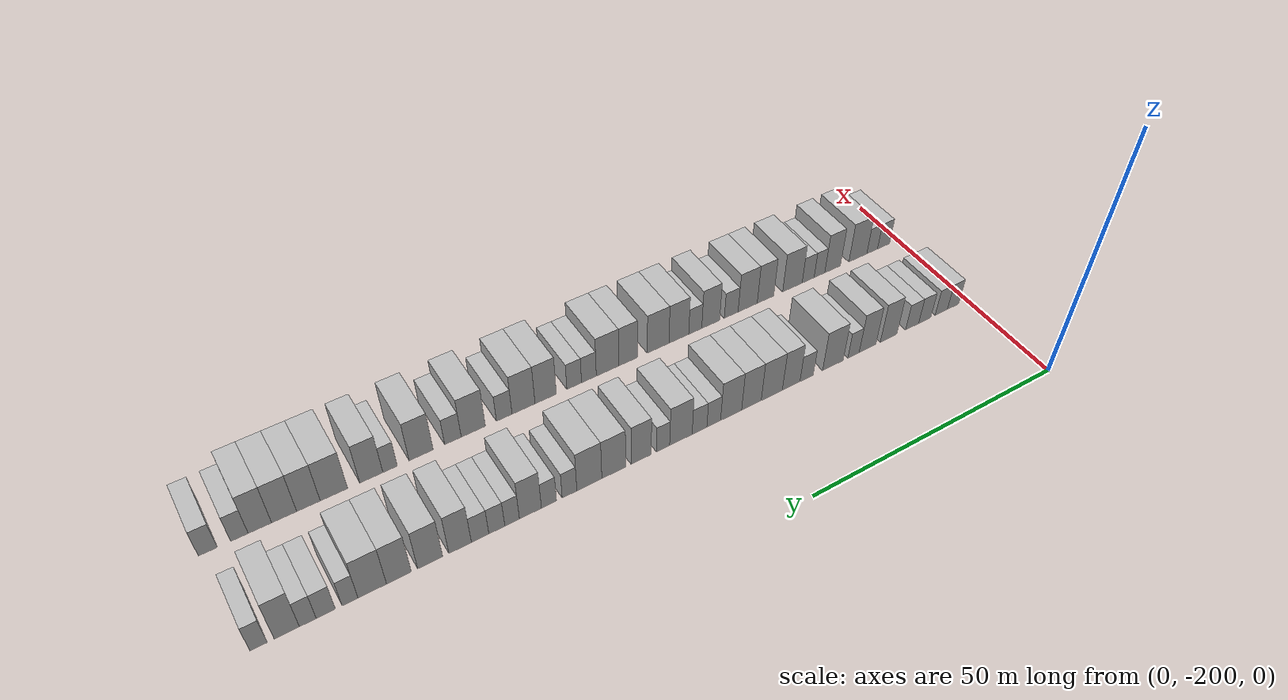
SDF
<sdf version="1.6">
 <world name="default">
  <model name="building_1">
   <static>1</static>
   <pose>25.0000 -196.6714 0 0.000000 0.000000 0.000000</pose>
   <link name="link">
    <pose>0 0 3.00 0 0 0</pose>
    <collision name="collision"><geometry><box><size>10.0000 2.6572 6.0000</size></box></geometry></collision>
    <visual name="visual">
     <cast_shadows>0</cast_shadows>
     <geometry><box><size>10.0000 2.6572 6.0000</size></box></geometry>
     <material>
      <script>
       <uri>model://HANNAS_wall/materials/scripts</uri>
       <uri>model://HANNAS_wall/materials/textures</uri>
       <name>vrc/HANNAS_wall</name>
      </script>
     </material>
    </visual>
   </link>
  </model>
  <model name="building_2">
   <static>1</static>
   <pose>25.0000 -193.8930 0 0.000000 0.000000 0.000000</pose>
   <link name="link">
    <pose>0 0 3.00 0 0 0</pose>
    <collision name="collision"><geometry><box><size>10.0000 2.8997 6.0000</size></box></geometry></collision>
    <visual name="visual">
     <cast_shadows>0</cast_shadows>
     <geometry><box><size>10.0000 2.8997 6.0000</size></box></geometry>
     <material>
      <script>
       <uri>model://HANNAS_wall/materials/scripts</uri>
       <uri>model://HANNAS_wall/materials/textures</uri>
       <name>vrc/HANNAS_wall</name>
      </script>
     </material>
    </visual>
   </link>
  </model>
  <model name="building_3">
   <static>1</static>
   <pose>25.0000 -190.0357 0 0.000000 0.000000 0.000000</pose>
   <link name="link">
    <pose>0 0 3.00 0 0 0</pose>
    <collision name="collision"><geometry><box><size>10.0000 2.8149 6.0000</size></box></geometry></collision>
    <visual name="visual">
     <cast_shadows>0</cast_shadows>
     <geometry><box><size>10.0000 2.8149 6.0000</size></box></geometry>
     <material>
      <script>
       <uri>model://HANNAS_wall/materials/scripts</uri>
       <uri>model://HANNAS_wall/materials/textures</uri>
       <name>vrc/HANNAS_wall</name>
      </script>
     </material>
    </visual>
   </link>
  </model>
  <model name="building_4">
   <static>1</static>
   <pose>25.0000 -187.1431 0 0.000000 0.000000 0.000000</pose>
   <link name="link">
    <pose>0 0 3.00 0 0 0</pose>
    <collision name="collision"><geometry><box><size>10.0000 2.9703 6.0000</size></box></geometry></collision>
    <visual name="visual">
     <cast_shadows>0</cast_shadows>
     <geometry><box><size>10.0000 2.9703 6.0000</size></box></geometry>
     <material>
      <script>
       <uri>model://HANNAS_wall/materials/scripts</uri>
       <uri>model://HANNAS_wall/materials/textures</uri>
       <name>vrc/HANNAS_wall</name>
      </script>
     </material>
    </visual>
   </link>
  </model>
  <model name="building_5">
   <static>1</static>
   <pose>25.0000 -181.7959 0 0.000000 0.000000 0.000000</pose>
   <link name="link">
    <pose>0 0 4.50 0 0 0</pose>
    <collision name="collision"><geometry><box><size>10.0000 3.7241 9.0000</size></box></geometry></collision>
    <visual name="visual">
     <cast_shadows>0</cast_shadows>
     <geometry><box><size>10.0000 3.7241 9.0000</size></box></geometry>
     <material>
      <script>
       <uri>model://HANNAS_wall/materials/scripts</uri>
       <uri>model://HANNAS_wall/materials/textures</uri>
       <name>vrc/HANNAS_wall</name>
      </script>
     </material>
    </visual>
   </link>
  </model>
  <model name="building_6">
   <static>1</static>
   <pose>25.0000 -177.0930 0 0.000000 0.000000 0.000000</pose>
   <link name="link">
    <pose>0 0 4.50 0 0 0</pose>
    <collision name="collision"><geometry><box><size>10.0000 3.6816 9.0000</size></box></geometry></collision>
    <visual name="visual">
     <cast_shadows>0</cast_shadows>
     <geometry><box><size>10.0000 3.6816 9.0000</size></box></geometry>
     <material>
      <script>
       <uri>model://HANNAS_wall/materials/scripts</uri>
       <uri>model://HANNAS_wall/materials/textures</uri>
       <name>vrc/HANNAS_wall</name>
      </script>
     </material>
    </visual>
   </link>
  </model>
  <model name="building_7">
   <static>1</static>
   <pose>25.0000 -174.0085 0 0.000000 0.000000 0.000000</pose>
   <link name="link">
    <pose>0 0 3.00 0 0 0</pose>
    <collision name="collision"><geometry><box><size>10.0000 2.4874 6.0000</size></box></geometry></collision>
    <visual name="visual">
     <cast_shadows>0</cast_shadows>
     <geometry><box><size>10.0000 2.4874 6.0000</size></box></geometry>
     <material>
      <script>
       <uri>model://HANNAS_wall/materials/scripts</uri>
       <uri>model://HANNAS_wall/materials/textures</uri>
       <name>vrc/HANNAS_wall</name>
      </script>
     </material>
    </visual>
   </link>
  </model>
  <model name="building_8">
   <static>1</static>
   <pose>25.0000 -169.5566 0 0.000000 0.000000 0.000000</pose>
   <link name="link">
    <pose>0 0 4.50 0 0 0</pose>
    <collision name="collision"><geometry><box><size>10.0000 4.4163 9.0000</size></box></geometry></collision>
    <visual name="visual">
     <cast_shadows>0</cast_shadows>
     <geometry><box><size>10.0000 4.4163 9.0000</size></box></geometry>
     <material>
      <script>
       <uri>model://HANNAS_wall/materials/scripts</uri>
       <uri>model://HANNAS_wall/materials/textures</uri>
       <name>vrc/HANNAS_wall</name>
      </script>
     </material>
    </visual>
   </link>
  </model>
  <model name="building_9">
   <static>1</static>
   <pose>25.0000 -163.9405 0 0.000000 0.000000 0.000000</pose>
   <link name="link">
    <pose>0 0 3.00 0 0 0</pose>
    <collision name="collision"><geometry><box><size>10.0000 2.8160 6.0000</size></box></geometry></collision>
    <visual name="visual">
     <cast_shadows>0</cast_shadows>
     <geometry><box><size>10.0000 2.8160 6.0000</size></box></geometry>
     <material>
      <script>
       <uri>model://HANNAS_wall/materials/scripts</uri>
       <uri>model://HANNAS_wall/materials/textures</uri>
       <name>vrc/HANNAS_wall</name>
      </script>
     </material>
    </visual>
   </link>
  </model>
  <model name="building_10">
   <static>1</static>
   <pose>25.0000 -160.7035 0 0.000000 0.000000 0.000000</pose>
   <link name="link">
    <pose>0 0 4.50 0 0 0</pose>
    <collision name="collision"><geometry><box><size>10.0000 3.6581 9.0000</size></box></geometry></collision>
    <visual name="visual">
     <cast_shadows>0</cast_shadows>
     <geometry><box><size>10.0000 3.6581 9.0000</size></box></geometry>
     <material>
      <script>
       <uri>model://HANNAS_wall/materials/scripts</uri>
       <uri>model://HANNAS_wall/materials/textures</uri>
       <name>vrc/HANNAS_wall</name>
      </script>
     </material>
    </visual>
   </link>
  </model>
  <model name="building_11">
   <static>1</static>
   <pose>25.0000 -156.7026 0 0.000000 0.000000 0.000000</pose>
   <link name="link">
    <pose>0 0 4.50 0 0 0</pose>
    <collision name="collision"><geometry><box><size>10.0000 4.3437 9.0000</size></box></geometry></collision>
    <visual name="visual">
     <cast_shadows>0</cast_shadows>
     <geometry><box><size>10.0000 4.3437 9.0000</size></box></geometry>
     <material>
      <script>
       <uri>model://HANNAS_wall/materials/scripts</uri>
       <uri>model://HANNAS_wall/materials/textures</uri>
       <name>vrc/HANNAS_wall</name>
      </script>
     </material>
    </visual>
   </link>
  </model>
  <model name="building_12">
   <static>1</static>
   <pose>25.0000 -152.5547 0 0.000000 0.000000 0.000000</pose>
   <link name="link">
    <pose>0 0 4.50 0 0 0</pose>
    <collision name="collision"><geometry><box><size>10.0000 3.9522 9.0000</size></box></geometry></collision>
    <visual name="visual">
     <cast_shadows>0</cast_shadows>
     <geometry><box><size>10.0000 3.9522 9.0000</size></box></geometry>
     <material>
      <script>
       <uri>model://HANNAS_wall/materials/scripts</uri>
       <uri>model://HANNAS_wall/materials/textures</uri>
       <name>vrc/HANNAS_wall</name>
      </script>
     </material>
    </visual>
   </link>
  </model>
  <model name="building_13">
   <static>1</static>
   <pose>25.0000 -148.4807 0 0.000000 0.000000 0.000000</pose>
   <link name="link">
    <pose>0 0 4.50 0 0 0</pose>
    <collision name="collision"><geometry><box><size>10.0000 4.1957 9.0000</size></box></geometry></collision>
    <visual name="visual">
     <cast_shadows>0</cast_shadows>
     <geometry><box><size>10.0000 4.1957 9.0000</size></box></geometry>
     <material>
      <script>
       <uri>model://HANNAS_wall/materials/scripts</uri>
       <uri>model://HANNAS_wall/materials/textures</uri>
       <name>vrc/HANNAS_wall</name>
      </script>
     </material>
    </visual>
   </link>
  </model>
  <model name="building_14">
   <static>1</static>
   <pose>25.0000 -145.0377 0 0.000000 0.000000 0.000000</pose>
   <link name="link">
    <pose>0 0 3.00 0 0 0</pose>
    <collision name="collision"><geometry><box><size>10.0000 2.6903 6.0000</size></box></geometry></collision>
    <visual name="visual">
     <cast_shadows>0</cast_shadows>
     <geometry><box><size>10.0000 2.6903 6.0000</size></box></geometry>
     <material>
      <script>
       <uri>model://HANNAS_wall/materials/scripts</uri>
       <uri>model://HANNAS_wall/materials/textures</uri>
       <name>vrc/HANNAS_wall</name>
      </script>
     </material>
    </visual>
   </link>
  </model>
  <model name="building_15">
   <static>1</static>
   <pose>25.0000 -142.2592 0 0.000000 0.000000 0.000000</pose>
   <link name="link">
    <pose>0 0 3.00 0 0 0</pose>
    <collision name="collision"><geometry><box><size>10.0000 2.8667 6.0000</size></box></geometry></collision>
    <visual name="visual">
     <cast_shadows>0</cast_shadows>
     <geometry><box><size>10.0000 2.8667 6.0000</size></box></geometry>
     <material>
      <script>
       <uri>model://HANNAS_wall/materials/scripts</uri>
       <uri>model://HANNAS_wall/materials/textures</uri>
       <name>vrc/HANNAS_wall</name>
      </script>
     </material>
    </visual>
   </link>
  </model>
  <model name="building_16">
   <static>1</static>
   <pose>25.0000 -138.6716 0 0.000000 0.000000 0.000000</pose>
   <link name="link">
    <pose>0 0 4.50 0 0 0</pose>
    <collision name="collision"><geometry><box><size>10.0000 4.3085 9.0000</size></box></geometry></collision>
    <visual name="visual">
     <cast_shadows>0</cast_shadows>
     <geometry><box><size>10.0000 4.3085 9.0000</size></box></geometry>
     <material>
      <script>
       <uri>model://HANNAS_wall/materials/scripts</uri>
       <uri>model://HANNAS_wall/materials/textures</uri>
       <name>vrc/HANNAS_wall</name>
      </script>
     </material>
    </visual>
   </link>
  </model>
  <model name="building_17">
   <static>1</static>
   <pose>25.0000 -135.2732 0 0.000000 0.000000 0.000000</pose>
   <link name="link">
    <pose>0 0 3.00 0 0 0</pose>
    <collision name="collision"><geometry><box><size>10.0000 2.4883 6.0000</size></box></geometry></collision>
    <visual name="visual">
     <cast_shadows>0</cast_shadows>
     <geometry><box><size>10.0000 2.4883 6.0000</size></box></geometry>
     <material>
      <script>
       <uri>model://HANNAS_wall/materials/scripts</uri>
       <uri>model://HANNAS_wall/materials/textures</uri>
       <name>vrc/HANNAS_wall</name>
      </script>
     </material>
    </visual>
   </link>
  </model>
  <model name="building_18">
   <static>1</static>
   <pose>25.0000 -131.1658 0 0.000000 0.000000 0.000000</pose>
   <link name="link">
    <pose>0 0 4.50 0 0 0</pose>
    <collision name="collision"><geometry><box><size>10.0000 3.7266 9.0000</size></box></geometry></collision>
    <visual name="visual">
     <cast_shadows>0</cast_shadows>
     <geometry><box><size>10.0000 3.7266 9.0000</size></box></geometry>
     <material>
      <script>
       <uri>model://HANNAS_wall/materials/scripts</uri>
       <uri>model://HANNAS_wall/materials/textures</uri>
       <name>vrc/HANNAS_wall</name>
      </script>
     </material>
    </visual>
   </link>
  </model>
  <model name="building_19">
   <static>1</static>
   <pose>25.0000 -126.1264 0 0.000000 0.000000 0.000000</pose>
   <link name="link">
    <pose>0 0 4.50 0 0 0</pose>
    <collision name="collision"><geometry><box><size>10.0000 4.3522 9.0000</size></box></geometry></collision>
    <visual name="visual">
     <cast_shadows>0</cast_shadows>
     <geometry><box><size>10.0000 4.3522 9.0000</size></box></geometry>
     <material>
      <script>
       <uri>model://HANNAS_wall/materials/scripts</uri>
       <uri>model://HANNAS_wall/materials/textures</uri>
       <name>vrc/HANNAS_wall</name>
      </script>
     </material>
    </visual>
   </link>
  </model>
  <model name="building_20">
   <static>1</static>
   <pose>25.0000 -121.7045 0 0.000000 0.000000 0.000000</pose>
   <link name="link">
    <pose>0 0 4.50 0 0 0</pose>
    <collision name="collision"><geometry><box><size>10.0000 4.4916 9.0000</size></box></geometry></collision>
    <visual name="visual">
     <cast_shadows>0</cast_shadows>
     <geometry><box><size>10.0000 4.4916 9.0000</size></box></geometry>
     <material>
      <script>
       <uri>model://HANNAS_wall/materials/scripts</uri>
       <uri>model://HANNAS_wall/materials/textures</uri>
       <name>vrc/HANNAS_wall</name>
      </script>
     </material>
    </visual>
   </link>
  </model>
  <model name="building_21">
   <static>1</static>
   <pose>25.0000 -118.1646 0 0.000000 0.000000 0.000000</pose>
   <link name="link">
    <pose>0 0 3.00 0 0 0</pose>
    <collision name="collision"><geometry><box><size>10.0000 2.5880 6.0000</size></box></geometry></collision>
    <visual name="visual">
     <cast_shadows>0</cast_shadows>
     <geometry><box><size>10.0000 2.5880 6.0000</size></box></geometry>
     <material>
      <script>
       <uri>model://HANNAS_wall/materials/scripts</uri>
       <uri>model://HANNAS_wall/materials/textures</uri>
       <name>vrc/HANNAS_wall</name>
      </script>
     </material>
    </visual>
   </link>
  </model>
  <model name="building_22">
   <static>1</static>
   <pose>25.0000 -114.5606 0 0.000000 0.000000 0.000000</pose>
   <link name="link">
    <pose>0 0 3.00 0 0 0</pose>
    <collision name="collision"><geometry><box><size>10.0000 2.6201 6.0000</size></box></geometry></collision>
    <visual name="visual">
     <cast_shadows>0</cast_shadows>
     <geometry><box><size>10.0000 2.6201 6.0000</size></box></geometry>
     <material>
      <script>
       <uri>model://HANNAS_wall/materials/scripts</uri>
       <uri>model://HANNAS_wall/materials/textures</uri>
       <name>vrc/HANNAS_wall</name>
      </script>
     </material>
    </visual>
   </link>
  </model>
  <model name="building_23">
   <static>1</static>
   <pose>25.0000 -111.3578 0 0.000000 0.000000 0.000000</pose>
   <link name="link">
    <pose>0 0 4.50 0 0 0</pose>
    <collision name="collision"><geometry><box><size>10.0000 3.7856 9.0000</size></box></geometry></collision>
    <visual name="visual">
     <cast_shadows>0</cast_shadows>
     <geometry><box><size>10.0000 3.7856 9.0000</size></box></geometry>
     <material>
      <script>
       <uri>model://HANNAS_wall/materials/scripts</uri>
       <uri>model://HANNAS_wall/materials/textures</uri>
       <name>vrc/HANNAS_wall</name>
      </script>
     </material>
    </visual>
   </link>
  </model>
  <model name="building_24">
   <static>1</static>
   <pose>25.0000 -108.2224 0 0.000000 0.000000 0.000000</pose>
   <link name="link">
    <pose>0 0 3.00 0 0 0</pose>
    <collision name="collision"><geometry><box><size>10.0000 2.4851 6.0000</size></box></geometry></collision>
    <visual name="visual">
     <cast_shadows>0</cast_shadows>
     <geometry><box><size>10.0000 2.4851 6.0000</size></box></geometry>
     <material>
      <script>
       <uri>model://HANNAS_wall/materials/scripts</uri>
       <uri>model://HANNAS_wall/materials/textures</uri>
       <name>vrc/HANNAS_wall</name>
      </script>
     </material>
    </visual>
   </link>
  </model>
  <model name="building_25">
   <static>1</static>
   <pose>25.0000 -105.6417 0 0.000000 0.000000 0.000000</pose>
   <link name="link">
    <pose>0 0 3.00 0 0 0</pose>
    <collision name="collision"><geometry><box><size>10.0000 2.6763 6.0000</size></box></geometry></collision>
    <visual name="visual">
     <cast_shadows>0</cast_shadows>
     <geometry><box><size>10.0000 2.6763 6.0000</size></box></geometry>
     <material>
      <script>
       <uri>model://HANNAS_wall/materials/scripts</uri>
       <uri>model://HANNAS_wall/materials/textures</uri>
       <name>vrc/HANNAS_wall</name>
      </script>
     </material>
    </visual>
   </link>
  </model>
  <model name="building_26">
   <static>1</static>
   <pose>25.0000 -102.8518 0 0.000000 0.000000 0.000000</pose>
   <link name="link">
    <pose>0 0 3.00 0 0 0</pose>
    <collision name="collision"><geometry><box><size>10.0000 2.9035 6.0000</size></box></geometry></collision>
    <visual name="visual">
     <cast_shadows>0</cast_shadows>
     <geometry><box><size>10.0000 2.9035 6.0000</size></box></geometry>
     <material>
      <script>
       <uri>model://HANNAS_wall/materials/scripts</uri>
       <uri>model://HANNAS_wall/materials/textures</uri>
       <name>vrc/HANNAS_wall</name>
      </script>
     </material>
    </visual>
   </link>
  </model>
  <model name="building_27">
   <static>1</static>
   <pose>25.0000 -99.5508 0 0.000000 0.000000 0.000000</pose>
   <link name="link">
    <pose>0 0 4.50 0 0 0</pose>
    <collision name="collision"><geometry><box><size>10.0000 3.6984 9.0000</size></box></geometry></collision>
    <visual name="visual">
     <cast_shadows>0</cast_shadows>
     <geometry><box><size>10.0000 3.6984 9.0000</size></box></geometry>
     <material>
      <script>
       <uri>model://HANNAS_wall/materials/scripts</uri>
       <uri>model://HANNAS_wall/materials/textures</uri>
       <name>vrc/HANNAS_wall</name>
      </script>
     </material>
    </visual>
   </link>
  </model>
  <model name="building_28">
   <static>1</static>
   <pose>25.0000 -94.6884 0 0.000000 0.000000 0.000000</pose>
   <link name="link">
    <pose>0 0 4.50 0 0 0</pose>
    <collision name="collision"><geometry><box><size>10.0000 4.0265 9.0000</size></box></geometry></collision>
    <visual name="visual">
     <cast_shadows>0</cast_shadows>
     <geometry><box><size>10.0000 4.0265 9.0000</size></box></geometry>
     <material>
      <script>
       <uri>model://HANNAS_wall/materials/scripts</uri>
       <uri>model://HANNAS_wall/materials/textures</uri>
       <name>vrc/HANNAS_wall</name>
      </script>
     </material>
    </visual>
   </link>
  </model>
  <model name="building_29">
   <static>1</static>
   <pose>25.0000 -89.7209 0 0.000000 0.000000 0.000000</pose>
   <link name="link">
    <pose>0 0 4.50 0 0 0</pose>
    <collision name="collision"><geometry><box><size>10.0000 3.9085 9.0000</size></box></geometry></collision>
    <visual name="visual">
     <cast_shadows>0</cast_shadows>
     <geometry><box><size>10.0000 3.9085 9.0000</size></box></geometry>
     <material>
      <script>
       <uri>model://HANNAS_wall/materials/scripts</uri>
       <uri>model://HANNAS_wall/materials/textures</uri>
       <name>vrc/HANNAS_wall</name>
      </script>
     </material>
    </visual>
   </link>
  </model>
  <model name="building_30">
   <static>1</static>
   <pose>25.0000 -85.5600 0 0.000000 0.000000 0.000000</pose>
   <link name="link">
    <pose>0 0 4.50 0 0 0</pose>
    <collision name="collision"><geometry><box><size>10.0000 4.4133 9.0000</size></box></geometry></collision>
    <visual name="visual">
     <cast_shadows>0</cast_shadows>
     <geometry><box><size>10.0000 4.4133 9.0000</size></box></geometry>
     <material>
      <script>
       <uri>model://HANNAS_wall/materials/scripts</uri>
       <uri>model://HANNAS_wall/materials/textures</uri>
       <name>vrc/HANNAS_wall</name>
      </script>
     </material>
    </visual>
   </link>
  </model>
  <model name="building_31">
   <static>1</static>
   <pose>25.0000 -82.1395 0 0.000000 0.000000 0.000000</pose>
   <link name="link">
    <pose>0 0 3.00 0 0 0</pose>
    <collision name="collision"><geometry><box><size>10.0000 2.4278 6.0000</size></box></geometry></collision>
    <visual name="visual">
     <cast_shadows>0</cast_shadows>
     <geometry><box><size>10.0000 2.4278 6.0000</size></box></geometry>
     <material>
      <script>
       <uri>model://HANNAS_wall/materials/scripts</uri>
       <uri>model://HANNAS_wall/materials/textures</uri>
       <name>vrc/HANNAS_wall</name>
      </script>
     </material>
    </visual>
   </link>
  </model>
  <model name="building_32">
   <static>1</static>
   <pose>25.0000 -78.4875 0 0.000000 0.000000 0.000000</pose>
   <link name="link">
    <pose>0 0 3.00 0 0 0</pose>
    <collision name="collision"><geometry><box><size>10.0000 2.8761 6.0000</size></box></geometry></collision>
    <visual name="visual">
     <cast_shadows>0</cast_shadows>
     <geometry><box><size>10.0000 2.8761 6.0000</size></box></geometry>
     <material>
      <script>
       <uri>model://HANNAS_wall/materials/scripts</uri>
       <uri>model://HANNAS_wall/materials/textures</uri>
       <name>vrc/HANNAS_wall</name>
      </script>
     </material>
    </visual>
   </link>
  </model>
  <model name="building_33">
   <static>1</static>
   <pose>25.0000 -75.7986 0 0.000000 0.000000 0.000000</pose>
   <link name="link">
    <pose>0 0 3.00 0 0 0</pose>
    <collision name="collision"><geometry><box><size>10.0000 2.5016 6.0000</size></box></geometry></collision>
    <visual name="visual">
     <cast_shadows>0</cast_shadows>
     <geometry><box><size>10.0000 2.5016 6.0000</size></box></geometry>
     <material>
      <script>
       <uri>model://HANNAS_wall/materials/scripts</uri>
       <uri>model://HANNAS_wall/materials/textures</uri>
       <name>vrc/HANNAS_wall</name>
      </script>
     </material>
    </visual>
   </link>
  </model>
  <model name="building_34">
   <static>1</static>
   <pose>25.0000 -72.7045 0 0.000000 0.000000 0.000000</pose>
   <link name="link">
    <pose>0 0 4.50 0 0 0</pose>
    <collision name="collision"><geometry><box><size>10.0000 3.6865 9.0000</size></box></geometry></collision>
    <visual name="visual">
     <cast_shadows>0</cast_shadows>
     <geometry><box><size>10.0000 3.6865 9.0000</size></box></geometry>
     <material>
      <script>
       <uri>model://HANNAS_wall/materials/scripts</uri>
       <uri>model://HANNAS_wall/materials/textures</uri>
       <name>vrc/HANNAS_wall</name>
      </script>
     </material>
    </visual>
   </link>
  </model>
  <model name="building_35">
   <static>1</static>
   <pose>25.0000 -68.6142 0 0.000000 0.000000 0.000000</pose>
   <link name="link">
    <pose>0 0 3.00 0 0 0</pose>
    <collision name="collision"><geometry><box><size>10.0000 2.4942 6.0000</size></box></geometry></collision>
    <visual name="visual">
     <cast_shadows>0</cast_shadows>
     <geometry><box><size>10.0000 2.4942 6.0000</size></box></geometry>
     <material>
      <script>
       <uri>model://HANNAS_wall/materials/scripts</uri>
       <uri>model://HANNAS_wall/materials/textures</uri>
       <name>vrc/HANNAS_wall</name>
      </script>
     </material>
    </visual>
   </link>
  </model>
  <model name="building_101">
   <static>1</static>
   <pose>44.0000 -196.5357 0 0.000000 0.000000 0.000000</pose>
   <link name="link">
    <pose>0 0 3.00 0 0 0</pose>
    <collision name="collision"><geometry><box><size>10.0000 2.9286 6.0000</size></box></geometry></collision>
    <visual name="visual">
     <cast_shadows>0</cast_shadows>
     <geometry><box><size>10.0000 2.9286 6.0000</size></box></geometry>
     <material>
      <script>
       <uri>model://HANNAS_wall/materials/scripts</uri>
       <uri>model://HANNAS_wall/materials/textures</uri>
       <name>vrc/HANNAS_wall</name>
      </script>
     </material>
    </visual>
   </link>
  </model>
  <model name="building_102">
   <static>1</static>
   <pose>44.0000 -193.7895 0 0.000000 0.000000 0.000000</pose>
   <link name="link">
    <pose>0 0 3.00 0 0 0</pose>
    <collision name="collision"><geometry><box><size>10.0000 2.5638 6.0000</size></box></geometry></collision>
    <visual name="visual">
     <cast_shadows>0</cast_shadows>
     <geometry><box><size>10.0000 2.5638 6.0000</size></box></geometry>
     <material>
      <script>
       <uri>model://HANNAS_wall/materials/scripts</uri>
       <uri>model://HANNAS_wall/materials/textures</uri>
       <name>vrc/HANNAS_wall</name>
      </script>
     </material>
    </visual>
   </link>
  </model>
  <model name="building_103">
   <static>1</static>
   <pose>44.0000 -190.3772 0 0.000000 0.000000 0.000000</pose>
   <link name="link">
    <pose>0 0 4.50 0 0 0</pose>
    <collision name="collision"><geometry><box><size>10.0000 4.2609 9.0000</size></box></geometry></collision>
    <visual name="visual">
     <cast_shadows>0</cast_shadows>
     <geometry><box><size>10.0000 4.2609 9.0000</size></box></geometry>
     <material>
      <script>
       <uri>model://HANNAS_wall/materials/scripts</uri>
       <uri>model://HANNAS_wall/materials/textures</uri>
       <name>vrc/HANNAS_wall</name>
      </script>
     </material>
    </visual>
   </link>
  </model>
  <model name="building_104">
   <static>1</static>
   <pose>44.0000 -184.4240 0 0.000000 0.000000 0.000000</pose>
   <link name="link">
    <pose>0 0 4.50 0 0 0</pose>
    <collision name="collision"><geometry><box><size>10.0000 3.6456 9.0000</size></box></geometry></collision>
    <visual name="visual">
     <cast_shadows>0</cast_shadows>
     <geometry><box><size>10.0000 3.6456 9.0000</size></box></geometry>
     <material>
      <script>
       <uri>model://HANNAS_wall/materials/scripts</uri>
       <uri>model://HANNAS_wall/materials/textures</uri>
       <name>vrc/HANNAS_wall</name>
      </script>
     </material>
    </visual>
   </link>
  </model>
  <model name="building_105">
   <static>1</static>
   <pose>44.0000 -181.3672 0 0.000000 0.000000 0.000000</pose>
   <link name="link">
    <pose>0 0 3.00 0 0 0</pose>
    <collision name="collision"><geometry><box><size>10.0000 2.4681 6.0000</size></box></geometry></collision>
    <visual name="visual">
     <cast_shadows>0</cast_shadows>
     <geometry><box><size>10.0000 2.4681 6.0000</size></box></geometry>
     <material>
      <script>
       <uri>model://HANNAS_wall/materials/scripts</uri>
       <uri>model://HANNAS_wall/materials/textures</uri>
       <name>vrc/HANNAS_wall</name>
      </script>
     </material>
    </visual>
   </link>
  </model>
  <model name="building_106">
   <static>1</static>
   <pose>44.0000 -178.7613 0 0.000000 0.000000 0.000000</pose>
   <link name="link">
    <pose>0 0 3.00 0 0 0</pose>
    <collision name="collision"><geometry><box><size>10.0000 2.7437 6.0000</size></box></geometry></collision>
    <visual name="visual">
     <cast_shadows>0</cast_shadows>
     <geometry><box><size>10.0000 2.7437 6.0000</size></box></geometry>
     <material>
      <script>
       <uri>model://HANNAS_wall/materials/scripts</uri>
       <uri>model://HANNAS_wall/materials/textures</uri>
       <name>vrc/HANNAS_wall</name>
      </script>
     </material>
    </visual>
   </link>
  </model>
  <model name="building_107">
   <static>1</static>
   <pose>44.0000 -175.1966 0 0.000000 0.000000 0.000000</pose>
   <link name="link">
    <pose>0 0 4.50 0 0 0</pose>
    <collision name="collision"><geometry><box><size>10.0000 4.3857 9.0000</size></box></geometry></collision>
    <visual name="visual">
     <cast_shadows>0</cast_shadows>
     <geometry><box><size>10.0000 4.3857 9.0000</size></box></geometry>
     <material>
      <script>
       <uri>model://HANNAS_wall/materials/scripts</uri>
       <uri>model://HANNAS_wall/materials/textures</uri>
       <name>vrc/HANNAS_wall</name>
      </script>
     </material>
    </visual>
   </link>
  </model>
  <model name="building_108">
   <static>1</static>
   <pose>44.0000 -169.1781 0 0.000000 0.000000 0.000000</pose>
   <link name="link">
    <pose>0 0 4.50 0 0 0</pose>
    <collision name="collision"><geometry><box><size>10.0000 3.6512 9.0000</size></box></geometry></collision>
    <visual name="visual">
     <cast_shadows>0</cast_shadows>
     <geometry><box><size>10.0000 3.6512 9.0000</size></box></geometry>
     <material>
      <script>
       <uri>model://HANNAS_wall/materials/scripts</uri>
       <uri>model://HANNAS_wall/materials/textures</uri>
       <name>vrc/HANNAS_wall</name>
      </script>
     </material>
    </visual>
   </link>
  </model>
  <model name="building_109">
   <static>1</static>
   <pose>44.0000 -165.2620 0 0.000000 0.000000 0.000000</pose>
   <link name="link">
    <pose>0 0 4.50 0 0 0</pose>
    <collision name="collision"><geometry><box><size>10.0000 4.1810 9.0000</size></box></geometry></collision>
    <visual name="visual">
     <cast_shadows>0</cast_shadows>
     <geometry><box><size>10.0000 4.1810 9.0000</size></box></geometry>
     <material>
      <script>
       <uri>model://HANNAS_wall/materials/scripts</uri>
       <uri>model://HANNAS_wall/materials/textures</uri>
       <name>vrc/HANNAS_wall</name>
      </script>
     </material>
    </visual>
   </link>
  </model>
  <model name="building_110">
   <static>1</static>
   <pose>44.0000 -161.6835 0 0.000000 0.000000 0.000000</pose>
   <link name="link">
    <pose>0 0 3.00 0 0 0</pose>
    <collision name="collision"><geometry><box><size>10.0000 2.9760 6.0000</size></box></geometry></collision>
    <visual name="visual">
     <cast_shadows>0</cast_shadows>
     <geometry><box><size>10.0000 2.9760 6.0000</size></box></geometry>
     <material>
      <script>
       <uri>model://HANNAS_wall/materials/scripts</uri>
       <uri>model://HANNAS_wall/materials/textures</uri>
       <name>vrc/HANNAS_wall</name>
      </script>
     </material>
    </visual>
   </link>
  </model>
  <model name="building_111">
   <static>1</static>
   <pose>44.0000 -157.2957 0 0.000000 0.000000 0.000000</pose>
   <link name="link">
    <pose>0 0 4.50 0 0 0</pose>
    <collision name="collision"><geometry><box><size>10.0000 3.7996 9.0000</size></box></geometry></collision>
    <visual name="visual">
     <cast_shadows>0</cast_shadows>
     <geometry><box><size>10.0000 3.7996 9.0000</size></box></geometry>
     <material>
      <script>
       <uri>model://HANNAS_wall/materials/scripts</uri>
       <uri>model://HANNAS_wall/materials/textures</uri>
       <name>vrc/HANNAS_wall</name>
      </script>
     </material>
    </visual>
   </link>
  </model>
  <model name="building_112">
   <static>1</static>
   <pose>44.0000 -154.0280 0 0.000000 0.000000 0.000000</pose>
   <link name="link">
    <pose>0 0 3.00 0 0 0</pose>
    <collision name="collision"><geometry><box><size>10.0000 2.7358 6.0000</size></box></geometry></collision>
    <visual name="visual">
     <cast_shadows>0</cast_shadows>
     <geometry><box><size>10.0000 2.7358 6.0000</size></box></geometry>
     <material>
      <script>
       <uri>model://HANNAS_wall/materials/scripts</uri>
       <uri>model://HANNAS_wall/materials/textures</uri>
       <name>vrc/HANNAS_wall</name>
      </script>
     </material>
    </visual>
   </link>
  </model>
  <model name="building_113">
   <static>1</static>
   <pose>44.0000 -150.6118 0 0.000000 0.000000 0.000000</pose>
   <link name="link">
    <pose>0 0 4.50 0 0 0</pose>
    <collision name="collision"><geometry><box><size>10.0000 4.0966 9.0000</size></box></geometry></collision>
    <visual name="visual">
     <cast_shadows>0</cast_shadows>
     <geometry><box><size>10.0000 4.0966 9.0000</size></box></geometry>
     <material>
      <script>
       <uri>model://HANNAS_wall/materials/scripts</uri>
       <uri>model://HANNAS_wall/materials/textures</uri>
       <name>vrc/HANNAS_wall</name>
      </script>
     </material>
    </visual>
   </link>
  </model>
  <model name="building_114">
   <static>1</static>
   <pose>44.0000 -146.3483 0 0.000000 0.000000 0.000000</pose>
   <link name="link">
    <pose>0 0 4.50 0 0 0</pose>
    <collision name="collision"><geometry><box><size>10.0000 4.4305 9.0000</size></box></geometry></collision>
    <visual name="visual">
     <cast_shadows>0</cast_shadows>
     <geometry><box><size>10.0000 4.4305 9.0000</size></box></geometry>
     <material>
      <script>
       <uri>model://HANNAS_wall/materials/scripts</uri>
       <uri>model://HANNAS_wall/materials/textures</uri>
       <name>vrc/HANNAS_wall</name>
      </script>
     </material>
    </visual>
   </link>
  </model>
  <model name="building_115">
   <static>1</static>
   <pose>44.0000 -140.3017 0 0.000000 0.000000 0.000000</pose>
   <link name="link">
    <pose>0 0 4.50 0 0 0</pose>
    <collision name="collision"><geometry><box><size>10.0000 3.6626 9.0000</size></box></geometry></collision>
    <visual name="visual">
     <cast_shadows>0</cast_shadows>
     <geometry><box><size>10.0000 3.6626 9.0000</size></box></geometry>
     <material>
      <script>
       <uri>model://HANNAS_wall/materials/scripts</uri>
       <uri>model://HANNAS_wall/materials/textures</uri>
       <name>vrc/HANNAS_wall</name>
      </script>
     </material>
    </visual>
   </link>
  </model>
  <model name="building_116">
   <static>1</static>
   <pose>44.0000 -136.2374 0 0.000000 0.000000 0.000000</pose>
   <link name="link">
    <pose>0 0 4.50 0 0 0</pose>
    <collision name="collision"><geometry><box><size>10.0000 4.4661 9.0000</size></box></geometry></collision>
    <visual name="visual">
     <cast_shadows>0</cast_shadows>
     <geometry><box><size>10.0000 4.4661 9.0000</size></box></geometry>
     <material>
      <script>
       <uri>model://HANNAS_wall/materials/scripts</uri>
       <uri>model://HANNAS_wall/materials/textures</uri>
       <name>vrc/HANNAS_wall</name>
      </script>
     </material>
    </visual>
   </link>
  </model>
  <model name="building_117">
   <static>1</static>
   <pose>44.0000 -132.5682 0 0.000000 0.000000 0.000000</pose>
   <link name="link">
    <pose>0 0 3.00 0 0 0</pose>
    <collision name="collision"><geometry><box><size>10.0000 2.8722 6.0000</size></box></geometry></collision>
    <visual name="visual">
     <cast_shadows>0</cast_shadows>
     <geometry><box><size>10.0000 2.8722 6.0000</size></box></geometry>
     <material>
      <script>
       <uri>model://HANNAS_wall/materials/scripts</uri>
       <uri>model://HANNAS_wall/materials/textures</uri>
       <name>vrc/HANNAS_wall</name>
      </script>
     </material>
    </visual>
   </link>
  </model>
  <model name="building_118">
   <static>1</static>
   <pose>44.0000 -129.7249 0 0.000000 0.000000 0.000000</pose>
   <link name="link">
    <pose>0 0 3.00 0 0 0</pose>
    <collision name="collision"><geometry><box><size>10.0000 2.8144 6.0000</size></box></geometry></collision>
    <visual name="visual">
     <cast_shadows>0</cast_shadows>
     <geometry><box><size>10.0000 2.8144 6.0000</size></box></geometry>
     <material>
      <script>
       <uri>model://HANNAS_wall/materials/scripts</uri>
       <uri>model://HANNAS_wall/materials/textures</uri>
       <name>vrc/HANNAS_wall</name>
      </script>
     </material>
    </visual>
   </link>
  </model>
  <model name="building_119">
   <static>1</static>
   <pose>44.0000 -124.3106 0 0.000000 0.000000 0.000000</pose>
   <link name="link">
    <pose>0 0 4.50 0 0 0</pose>
    <collision name="collision"><geometry><box><size>10.0000 4.0141 9.0000</size></box></geometry></collision>
    <visual name="visual">
     <cast_shadows>0</cast_shadows>
     <geometry><box><size>10.0000 4.0141 9.0000</size></box></geometry>
     <material>
      <script>
       <uri>model://HANNAS_wall/materials/scripts</uri>
       <uri>model://HANNAS_wall/materials/textures</uri>
       <name>vrc/HANNAS_wall</name>
      </script>
     </material>
    </visual>
   </link>
  </model>
  <model name="building_120">
   <static>1</static>
   <pose>44.0000 -120.1739 0 0.000000 0.000000 0.000000</pose>
   <link name="link">
    <pose>0 0 4.50 0 0 0</pose>
    <collision name="collision"><geometry><box><size>10.0000 4.2594 9.0000</size></box></geometry></collision>
    <visual name="visual">
     <cast_shadows>0</cast_shadows>
     <geometry><box><size>10.0000 4.2594 9.0000</size></box></geometry>
     <material>
      <script>
       <uri>model://HANNAS_wall/materials/scripts</uri>
       <uri>model://HANNAS_wall/materials/textures</uri>
       <name>vrc/HANNAS_wall</name>
      </script>
     </material>
    </visual>
   </link>
  </model>
  <model name="building_121">
   <static>1</static>
   <pose>44.0000 -116.6084 0 0.000000 0.000000 0.000000</pose>
   <link name="link">
    <pose>0 0 3.00 0 0 0</pose>
    <collision name="collision"><geometry><box><size>10.0000 2.8717 6.0000</size></box></geometry></collision>
    <visual name="visual">
     <cast_shadows>0</cast_shadows>
     <geometry><box><size>10.0000 2.8717 6.0000</size></box></geometry>
     <material>
      <script>
       <uri>model://HANNAS_wall/materials/scripts</uri>
       <uri>model://HANNAS_wall/materials/textures</uri>
       <name>vrc/HANNAS_wall</name>
      </script>
     </material>
    </visual>
   </link>
  </model>
  <model name="building_122">
   <static>1</static>
   <pose>44.0000 -111.0098 0 0.000000 0.000000 0.000000</pose>
   <link name="link">
    <pose>0 0 4.50 0 0 0</pose>
    <collision name="collision"><geometry><box><size>10.0000 4.3254 9.0000</size></box></geometry></collision>
    <visual name="visual">
     <cast_shadows>0</cast_shadows>
     <geometry><box><size>10.0000 4.3254 9.0000</size></box></geometry>
     <material>
      <script>
       <uri>model://HANNAS_wall/materials/scripts</uri>
       <uri>model://HANNAS_wall/materials/textures</uri>
       <name>vrc/HANNAS_wall</name>
      </script>
     </material>
    </visual>
   </link>
  </model>
  <model name="building_123">
   <static>1</static>
   <pose>44.0000 -107.3760 0 0.000000 0.000000 0.000000</pose>
   <link name="link">
    <pose>0 0 3.00 0 0 0</pose>
    <collision name="collision"><geometry><box><size>10.0000 2.9424 6.0000</size></box></geometry></collision>
    <visual name="visual">
     <cast_shadows>0</cast_shadows>
     <geometry><box><size>10.0000 2.9424 6.0000</size></box></geometry>
     <material>
      <script>
       <uri>model://HANNAS_wall/materials/scripts</uri>
       <uri>model://HANNAS_wall/materials/textures</uri>
       <name>vrc/HANNAS_wall</name>
      </script>
     </material>
    </visual>
   </link>
  </model>
  <model name="building_124">
   <static>1</static>
   <pose>44.0000 -101.8197 0 0.000000 0.000000 0.000000</pose>
   <link name="link">
    <pose>0 0 4.50 0 0 0</pose>
    <collision name="collision"><geometry><box><size>10.0000 4.1701 9.0000</size></box></geometry></collision>
    <visual name="visual">
     <cast_shadows>0</cast_shadows>
     <geometry><box><size>10.0000 4.1701 9.0000</size></box></geometry>
     <material>
      <script>
       <uri>model://HANNAS_wall/materials/scripts</uri>
       <uri>model://HANNAS_wall/materials/textures</uri>
       <name>vrc/HANNAS_wall</name>
      </script>
     </material>
    </visual>
   </link>
  </model>
  <model name="building_125">
   <static>1</static>
   <pose>44.0000 -96.5056 0 0.000000 0.000000 0.000000</pose>
   <link name="link">
    <pose>0 0 3.00 0 0 0</pose>
    <collision name="collision"><geometry><box><size>10.0000 2.4582 6.0000</size></box></geometry></collision>
    <visual name="visual">
     <cast_shadows>0</cast_shadows>
     <geometry><box><size>10.0000 2.4582 6.0000</size></box></geometry>
     <material>
      <script>
       <uri>model://HANNAS_wall/materials/scripts</uri>
       <uri>model://HANNAS_wall/materials/textures</uri>
       <name>vrc/HANNAS_wall</name>
      </script>
     </material>
    </visual>
   </link>
  </model>
  <model name="building_126">
   <static>1</static>
   <pose>44.0000 -93.3424 0 0.000000 0.000000 0.000000</pose>
   <link name="link">
    <pose>0 0 4.50 0 0 0</pose>
    <collision name="collision"><geometry><box><size>10.0000 3.8682 9.0000</size></box></geometry></collision>
    <visual name="visual">
     <cast_shadows>0</cast_shadows>
     <geometry><box><size>10.0000 3.8682 9.0000</size></box></geometry>
     <material>
      <script>
       <uri>model://HANNAS_wall/materials/scripts</uri>
       <uri>model://HANNAS_wall/materials/textures</uri>
       <name>vrc/HANNAS_wall</name>
      </script>
     </material>
    </visual>
   </link>
  </model>
  <model name="building_127">
   <static>1</static>
   <pose>44.0000 -87.1707 0 0.000000 0.000000 0.000000</pose>
   <link name="link">
    <pose>0 0 4.50 0 0 0</pose>
    <collision name="collision"><geometry><box><size>10.0000 4.4753 9.0000</size></box></geometry></collision>
    <visual name="visual">
     <cast_shadows>0</cast_shadows>
     <geometry><box><size>10.0000 4.4753 9.0000</size></box></geometry>
     <material>
      <script>
       <uri>model://HANNAS_wall/materials/scripts</uri>
       <uri>model://HANNAS_wall/materials/textures</uri>
       <name>vrc/HANNAS_wall</name>
      </script>
     </material>
    </visual>
   </link>
  </model>
  <model name="building_128">
   <static>1</static>
   <pose>44.0000 -83.0394 0 0.000000 0.000000 0.000000</pose>
   <link name="link">
    <pose>0 0 4.50 0 0 0</pose>
    <collision name="collision"><geometry><box><size>10.0000 3.7873 9.0000</size></box></geometry></collision>
    <visual name="visual">
     <cast_shadows>0</cast_shadows>
     <geometry><box><size>10.0000 3.7873 9.0000</size></box></geometry>
     <material>
      <script>
       <uri>model://HANNAS_wall/materials/scripts</uri>
       <uri>model://HANNAS_wall/materials/textures</uri>
       <name>vrc/HANNAS_wall</name>
      </script>
     </material>
    </visual>
   </link>
  </model>
  <model name="building_129">
   <static>1</static>
   <pose>44.0000 -79.1648 0 0.000000 0.000000 0.000000</pose>
   <link name="link">
    <pose>0 0 4.50 0 0 0</pose>
    <collision name="collision"><geometry><box><size>10.0000 3.9618 9.0000</size></box></geometry></collision>
    <visual name="visual">
     <cast_shadows>0</cast_shadows>
     <geometry><box><size>10.0000 3.9618 9.0000</size></box></geometry>
     <material>
      <script>
       <uri>model://HANNAS_wall/materials/scripts</uri>
       <uri>model://HANNAS_wall/materials/textures</uri>
       <name>vrc/HANNAS_wall</name>
      </script>
     </material>
    </visual>
   </link>
  </model>
  <model name="building_130">
   <static>1</static>
   <pose>44.0000 -75.3592 0 0.000000 0.000000 0.000000</pose>
   <link name="link">
    <pose>0 0 4.50 0 0 0</pose>
    <collision name="collision"><geometry><box><size>10.0000 3.6494 9.0000</size></box></geometry></collision>
    <visual name="visual">
     <cast_shadows>0</cast_shadows>
     <geometry><box><size>10.0000 3.6494 9.0000</size></box></geometry>
     <material>
      <script>
       <uri>model://HANNAS_wall/materials/scripts</uri>
       <uri>model://HANNAS_wall/materials/textures</uri>
       <name>vrc/HANNAS_wall</name>
      </script>
     </material>
    </visual>
   </link>
  </model>
  <model name="building_131">
   <static>1</static>
   <pose>44.0000 -72.1855 0 0.000000 0.000000 0.000000</pose>
   <link name="link">
    <pose>0 0 3.00 0 0 0</pose>
    <collision name="collision"><geometry><box><size>10.0000 2.6981 6.0000</size></box></geometry></collision>
    <visual name="visual">
     <cast_shadows>0</cast_shadows>
     <geometry><box><size>10.0000 2.6981 6.0000</size></box></geometry>
     <material>
      <script>
       <uri>model://HANNAS_wall/materials/scripts</uri>
       <uri>model://HANNAS_wall/materials/textures</uri>
       <name>vrc/HANNAS_wall</name>
      </script>
     </material>
    </visual>
   </link>
  </model>
  <model name="building_132">
   <static>1</static>
   <pose>44.0000 -67.3968 0 0.000000 0.000000 0.000000</pose>
   <link name="link">
    <pose>0 0 3.00 0 0 0</pose>
    <collision name="collision"><geometry><box><size>10.0000 2.8794 6.0000</size></box></geometry></collision>
    <visual name="visual">
     <cast_shadows>0</cast_shadows>
     <geometry><box><size>10.0000 2.8794 6.0000</size></box></geometry>
     <material>
      <script>
       <uri>model://HANNAS_wall/materials/scripts</uri>
       <uri>model://HANNAS_wall/materials/textures</uri>
       <name>vrc/HANNAS_wall</name>
      </script>
     </material>
    </visual>
   </link>
  </model>
 </world>
</sdf>
